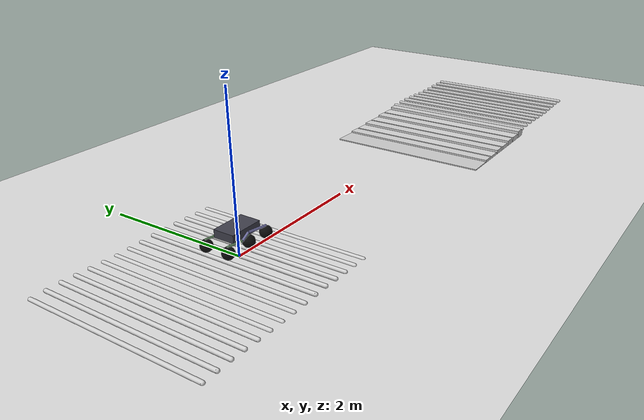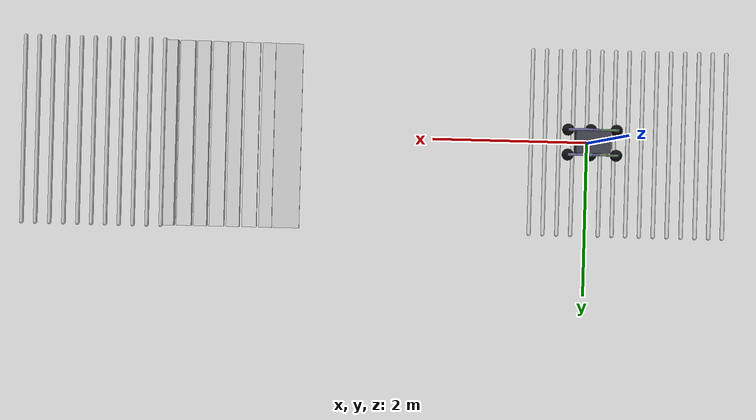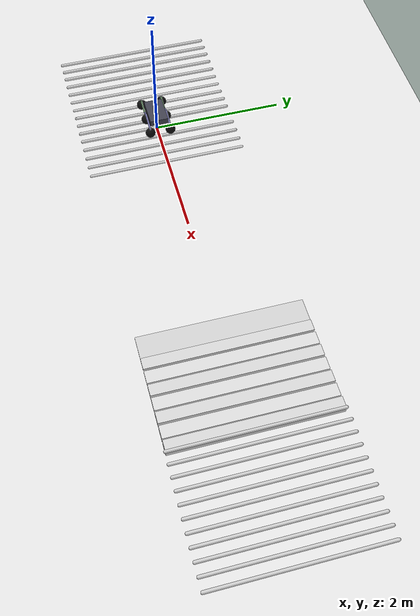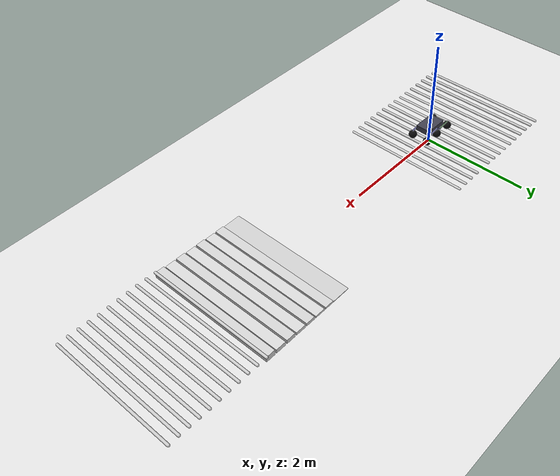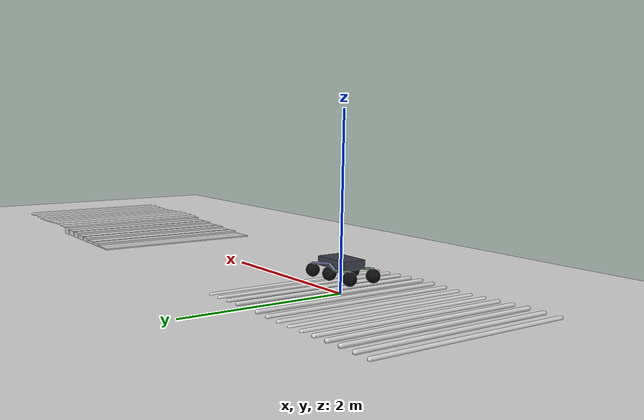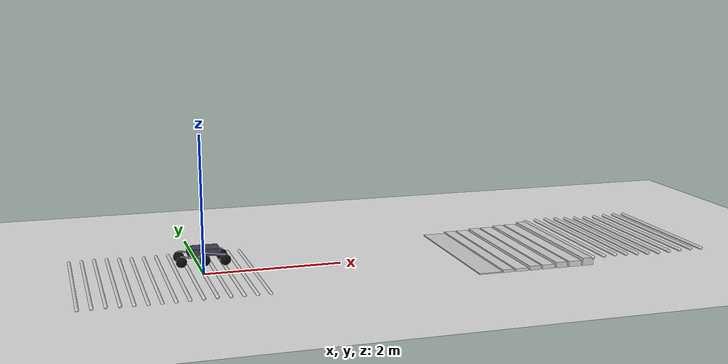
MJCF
<mujoco model="scene_stairs_logs_modified">
  <compiler angle="degree" inertiafromgeom="true"/>
  <option timestep="0.002" gravity="0 0 -9.81"/>

  <default>
    <geom contype="1" conaffinity="1"/>
  </default>

  <include file="rover_one_side_2d.xml"/>

  <worldbody>
    <geom name="floor" type="plane" size="45 45 0.1" pos="0 0 0"
          contype="1" conaffinity="1"
          friction="1.40 0.01 0.0001"
          rgba="0.88 0.88 0.88 1"/>

    <!-- ========== ПЕРВАЯ СИНУСОИДА (от -1.80 до 0.90 м) ========== -->
    <body name="sine_before" pos="0 0 0">
      <geom type="capsule" fromto="-1.80 -1.2  0.000  -1.80  1.2  0.000" size="0.025" rgba="0.82 0.82 0.82 1"
            contype="1" conaffinity="1" friction="0.6 0.005 0.0001"/>
      <geom type="capsule" fromto="-1.62 -1.2  0.007  -1.62  1.2  0.007" size="0.025" rgba="0.82 0.82 0.82 1"
            contype="1" conaffinity="1" friction="0.6 0.005 0.0001"/>
      <geom type="capsule" fromto="-1.44 -1.2  0.012  -1.44  1.2  0.012" size="0.025" rgba="0.82 0.82 0.82 1"
            contype="1" conaffinity="1" friction="0.6 0.005 0.0001"/>
      <geom type="capsule" fromto="-1.26 -1.2  0.007  -1.26  1.2  0.007" size="0.025" rgba="0.82 0.82 0.82 1"
            contype="1" conaffinity="1" friction="0.6 0.005 0.0001"/>
      <geom type="capsule" fromto="-1.08 -1.2  0.000  -1.08  1.2  0.000" size="0.025" rgba="0.82 0.82 0.82 1"
            contype="1" conaffinity="1" friction="0.6 0.005 0.0001"/>
      <geom type="capsule" fromto="-0.90 -1.2 -0.007  -0.90  1.2 -0.007" size="0.025" rgba="0.82 0.82 0.82 1"
            contype="1" conaffinity="1" friction="0.6 0.005 0.0001"/>
      <geom type="capsule" fromto="-0.72 -1.2 -0.012  -0.72  1.2 -0.012" size="0.025" rgba="0.82 0.82 0.82 1"
            contype="1" conaffinity="1" friction="0.6 0.005 0.0001"/>
      <geom type="capsule" fromto="-0.54 -1.2 -0.007  -0.54  1.2 -0.007" size="0.025" rgba="0.82 0.82 0.82 1"
            contype="1" conaffinity="1" friction="0.6 0.005 0.0001"/>
      <geom type="capsule" fromto="-0.36 -1.2  0.000  -0.36  1.2  0.000" size="0.025" rgba="0.82 0.82 0.82 1"
            contype="1" conaffinity="1" friction="0.6 0.005 0.0001"/>
      <geom type="capsule" fromto="-0.18 -1.2  0.007  -0.18  1.2  0.007" size="0.025" rgba="0.82 0.82 0.82 1"
            contype="1" conaffinity="1" friction="0.6 0.005 0.0001"/>
      <geom type="capsule" fromto=" 0.00 -1.2  0.012   0.00  1.2  0.012" size="0.025" rgba="0.82 0.82 0.82 1"
            contype="1" conaffinity="1" friction="0.6 0.005 0.0001"/>
      <geom type="capsule" fromto=" 0.18 -1.2  0.007   0.18  1.2  0.007" size="0.025" rgba="0.82 0.82 0.82 1"
            contype="1" conaffinity="1" friction="0.6 0.005 0.0001"/>
      <geom type="capsule" fromto=" 0.36 -1.2  0.000   0.36  1.2  0.000" size="0.025" rgba="0.82 0.82 0.82 1"
            contype="1" conaffinity="1" friction="0.6 0.005 0.0001"/>
      <geom type="capsule" fromto=" 0.54 -1.2 -0.007   0.54  1.2 -0.007" size="0.025" rgba="0.82 0.82 0.82 1"
            contype="1" conaffinity="1" friction="0.6 0.005 0.0001"/>
      <geom type="capsule" fromto=" 0.72 -1.2 -0.012   0.72  1.2 -0.012" size="0.025" rgba="0.82 0.82 0.82 1"
            contype="1" conaffinity="1" friction="0.6 0.005 0.0001"/>
    </body>

    ========== РОВНЫЙ УЧАСТОК (3 метра: от 0.90 до 3.90 м) ==========

    <!-- ========== СТУПЕНЬКИ (от 3.90 до 5.50 м) ========== -->
    <body name="stairs_hardest_x2" pos="0 0 0">
      <geom type="box" pos="3.90 0 0.008" size="0.18 1.2 0.008" rgba="0.80 0.80 0.80 1"
            contype="1" conaffinity="1" friction="0.9 0.01 0.0001"/>

      <geom type="box" pos="4.16 0 0.0200" size="0.085 1.2 0.0200" rgba="0.82 0.82 0.82 1"
            contype="1" conaffinity="1" friction="1.0 0.015 0.0001"/>
      <geom type="box" pos="4.37 0 0.0200" size="0.095 1.2 0.0200" rgba="0.84 0.84 0.84 1"
            contype="1" conaffinity="1" friction="1.0 0.015 0.0001"/>

      <geom type="box" pos="4.58 0 0.0300" size="0.085 1.2 0.0300" rgba="0.82 0.82 0.82 1"
            contype="1" conaffinity="1" friction="1.1 0.02 0.0001"/>
      <geom type="box" pos="4.79 0 0.0300" size="0.095 1.2 0.0300" rgba="0.84 0.84 0.84 1"
            contype="1" conaffinity="1" friction="1.1 0.02 0.0001"/>

      <geom type="box" pos="5.00 0 0.0400" size="0.085 1.2 0.0400" rgba="0.82 0.82 0.82 1"
            contype="1" conaffinity="1" friction="1.2 0.025 0.0001"/>
      <geom type="box" pos="5.21 0 0.0400" size="0.095 1.2 0.0400" rgba="0.84 0.84 0.84 1"
            contype="1" conaffinity="1" friction="1.2 0.025 0.0001"/>

      <geom type="box" pos="5.42 0 0.0560" size="0.085 1.2 0.0560" rgba="0.82 0.82 0.82 1"
            contype="1" conaffinity="1" friction="1.3 0.03 0.0001"/>
    </body>

    <!-- ========== ВТОРАЯ СИНУСОИДА (от 5.50 до 7.50 м) ========== -->
    <body name="sine_on_top" pos="0 0 0">
      <geom type="capsule" fromto="5.50 -1.2 0.1104  5.50  1.2 0.1104" size="0.025" rgba="0.80 0.80 0.80 1"
            contype="1" conaffinity="1" friction="0.6 0.005 0.0001"/>
      <geom type="capsule" fromto="5.68 -1.2 0.1174  5.68  1.2 0.1174" size="0.025" rgba="0.80 0.80 0.80 1"
            contype="1" conaffinity="1" friction="0.6 0.005 0.0001"/>
      <geom type="capsule" fromto="5.86 -1.2 0.1224  5.86  1.2 0.1224" size="0.025" rgba="0.80 0.80 0.80 1"
            contype="1" conaffinity="1" friction="0.6 0.005 0.0001"/>
      <geom type="capsule" fromto="6.04 -1.2 0.1174  6.04  1.2 0.1174" size="0.025" rgba="0.80 0.80 0.80 1"
            contype="1" conaffinity="1" friction="0.6 0.005 0.0001"/>
      <geom type="capsule" fromto="6.22 -1.2 0.1104  6.22  1.2 0.1104" size="0.025" rgba="0.80 0.80 0.80 1"
            contype="1" conaffinity="1" friction="0.6 0.005 0.0001"/>
      <geom type="capsule" fromto="6.40 -1.2 0.1034  6.40  1.2 0.1034" size="0.025" rgba="0.80 0.80 0.80 1"
            contype="1" conaffinity="1" friction="0.6 0.005 0.0001"/>
      <geom type="capsule" fromto="6.58 -1.2 0.0984  6.58  1.2 0.0984" size="0.025" rgba="0.80 0.80 0.80 1"
            contype="1" conaffinity="1" friction="0.6 0.005 0.0001"/>
      <geom type="capsule" fromto="6.76 -1.2 0.1034  6.76  1.2 0.1034" size="0.025" rgba="0.80 0.80 0.80 1"
            contype="1" conaffinity="1" friction="0.6 0.005 0.0001"/>
      <geom type="capsule" fromto="6.94 -1.2 0.1104  6.94  1.2 0.1104" size="0.025" rgba="0.80 0.80 0.80 1"
            contype="1" conaffinity="1" friction="0.6 0.005 0.0001"/>
      <geom type="capsule" fromto="7.12 -1.2 0.1174  7.12  1.2 0.1174" size="0.025" rgba="0.80 0.80 0.80 1"
            contype="1" conaffinity="1" friction="0.6 0.005 0.0001"/>
      <geom type="capsule" fromto="7.30 -1.2 0.1104  7.30  1.2 0.1104" size="0.025" rgba="0.80 0.80 0.80 1"
            contype="1" conaffinity="1" friction="0.6 0.005 0.0001"/>
    </body>

    <light pos="0 0 3" dir="0 0 -1" diffuse="1 1 1"/>
    <light pos="6 0 4" dir="0 0 -1" diffuse="1 1 1"/>
    <camera name="main" pos="4.0 -3.5 2.5" xyaxes="0.7 0.7 0  -0.2 0.2 0.96"/>
  </worldbody>
</mujoco>

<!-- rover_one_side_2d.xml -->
<mujoco model="rocker_bogie_3d_diff">
  <compiler angle="degree" inertiafromgeom="true" autolimits="true"/>
  <option timestep="0.002" gravity="0 0 -9.81" solver="Newton" iterations="120"/>

  <default>
    <geom condim="4" friction="1.3 0.01 0.0001" solref="0.004 1" solimp="0.95 0.99 0.001"
          contype="0" conaffinity="0"/>
    <joint damping="2" armature="0.02" limited="false"/>
  </default>

  <asset>
    <material name="mat_chassis" rgba="0.25 0.25 0.30 1"/>
    <material name="mat_rocker"  rgba="0.45 0.45 0.65 1"/>
    <material name="mat_bogie"   rgba="0.40 0.55 0.40 1"/>
    <material name="mat_wheel"   rgba="0.05 0.05 0.05 1"/>
    <material name="mat_skid"    rgba="0.20 0.20 0.20 0.6"/>
  </asset>

  <worldbody>
    <body name="chassis" pos="0 0 0.35">
      <joint name="slide_x" type="slide" axis="1 0 0" damping="1.0"/>
      <joint name="slide_y" type="slide" axis="0 1 0" damping="1.0"/>
      <joint name="slide_z" type="slide" axis="0 0 1" damping="2.0"/>

      <joint name="roll"  type="hinge" axis="1 0 0" damping="4.0" limited="true" range="-20 20"/>
      <joint name="pitch" type="hinge" axis="0 1 0" damping="4.0" limited="true" range="-20 20"/>
      <joint name="yaw"   type="hinge" axis="0 0 1" damping="1.0"/>

      <inertial pos="0 0 -0.03" mass="8.0" diaginertia="0.25 0.55 0.55"/>

      <!-- кузов визуальный, НЕ контактит -->
      <geom type="box" size="0.22 0.14 0.05" material="mat_chassis"
            contype="0" conaffinity="0"/>

      <!-- ========== LEFT ========== -->
      <body name="rocker_L" pos="0 0.16 0">
        <joint name="rocker_L_j" type="hinge" axis="0 1 0" damping="8" limited="true" range="-35 35"/>

        <geom type="capsule" fromto="0 0 0   0.288 0 -0.04" size="0.015" density="500"
              material="mat_rocker" contype="0" conaffinity="0"/>
        <geom type="capsule" fromto="0 0 0   -0.096 0 -0.06" size="0.015" density="500"
              material="mat_rocker" contype="0" conaffinity="0"/>

        <body name="wheel_front_L" pos="0.288 0 -0.116">
          <joint name="wheel_front_L_j" type="hinge" axis="0 1 0" damping="0.4" armature="0.01"/>
          <geom type="sphere" size="0.076" material="mat_wheel"
                contype="1" conaffinity="1"/>
        </body>

        <body name="bogie_L" pos="-0.096 0 -0.06">
          <joint name="bogie_L_j" type="hinge" axis="0 1 0" damping="10" limited="true" range="-70 70"/>

          <geom type="capsule" fromto="0 0 0   0.096 0 0.03" size="0.013" density="550"
                material="mat_bogie" contype="0" conaffinity="0"/>
          <geom type="capsule" fromto="0 0 0   -0.232 0 0.03" size="0.013" density="550"
                material="mat_bogie" contype="0" conaffinity="0"/>

          <body name="wheel_mid_L" pos="0.096 0 -0.046">
            <joint name="wheel_mid_L_j" type="hinge" axis="0 1 0" damping="0.4" armature="0.01"/>
            <geom type="sphere" size="0.076" material="mat_wheel"
                  contype="1" conaffinity="1"/>
          </body>

          <body name="wheel_rear_L" pos="-0.232 0 -0.046">
            <joint name="wheel_rear_L_j" type="hinge" axis="0 1 0" damping="0.4" armature="0.01"/>
            <geom type="sphere" size="0.076" material="mat_wheel"
                  contype="1" conaffinity="1"/>
          </body>
        </body>
      </body>

      <!-- ========== RIGHT ========== -->
      <body name="rocker_R" pos="0 -0.16 0">
        <joint name="rocker_R_j" type="hinge" axis="0 1 0" damping="8" limited="true" range="-35 35"/>

        <geom type="capsule" fromto="0 0 0   0.288 0 -0.04" size="0.015" density="500"
              material="mat_rocker" contype="0" conaffinity="0"/>
        <geom type="capsule" fromto="0 0 0   -0.096 0 -0.06" size="0.015" density="500"
              material="mat_rocker" contype="0" conaffinity="0"/>

        <body name="wheel_front_R" pos="0.288 0 -0.116">
          <joint name="wheel_front_R_j" type="hinge" axis="0 1 0" damping="0.4" armature="0.01"/>
          <geom type="sphere" size="0.076" material="mat_wheel"
                contype="1" conaffinity="1"/>
        </body>

        <body name="bogie_R" pos="-0.096 0 -0.06">
          <joint name="bogie_R_j" type="hinge" axis="0 1 0" damping="10" limited="true" range="-70 70"/>

          <geom type="capsule" fromto="0 0 0   0.096 0 0.03" size="0.013" density="550"
                material="mat_bogie" contype="0" conaffinity="0"/>
          <geom type="capsule" fromto="0 0 0   -0.232 0 0.03" size="0.013" density="550"
                material="mat_bogie" contype="0" conaffinity="0"/>

          <body name="wheel_mid_R" pos="0.096 0 -0.046">
            <joint name="wheel_mid_R_j" type="hinge" axis="0 1 0" damping="0.4" armature="0.01"/>
            <geom type="sphere" size="0.076" material="mat_wheel"
                  contype="1" conaffinity="1"/>
          </body>

          <body name="wheel_rear_R" pos="-0.232 0 -0.046">
            <joint name="wheel_rear_R_j" type="hinge" axis="0 1 0" damping="0.4" armature="0.01"/>
            <geom type="sphere" size="0.076" material="mat_wheel"
                  contype="1" conaffinity="1"/>
          </body>
        </body>
      </body>

    </body>
  </worldbody>

  <actuator>
    <position name="diff_pitch" joint="pitch" kp="900" kv="80" forcerange="-250 250"/>
    <position name="diff_roll"  joint="roll"  kp="900" kv="80" forcerange="-250 250"/>

    <motor joint="wheel_front_L_j" gear="40"/>
    <motor joint="wheel_mid_L_j"   gear="40"/>
    <motor joint="wheel_rear_L_j"  gear="40"/>
    <motor joint="wheel_front_R_j" gear="40"/>
    <motor joint="wheel_mid_R_j"   gear="40"/>
    <motor joint="wheel_rear_R_j"  gear="40"/>
  </actuator>
</mujoco>
